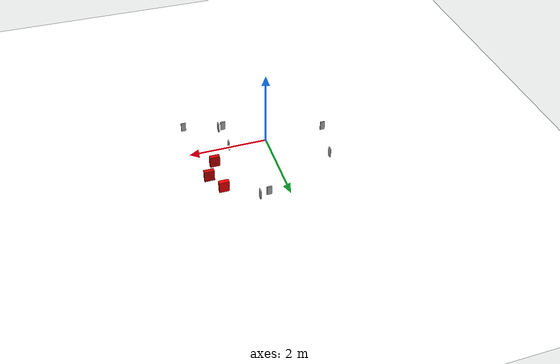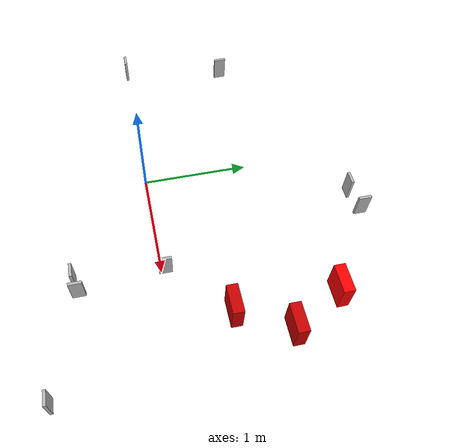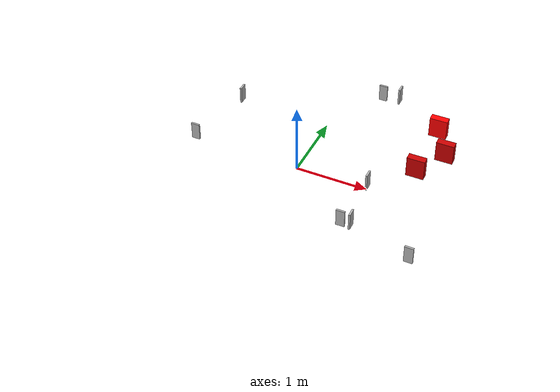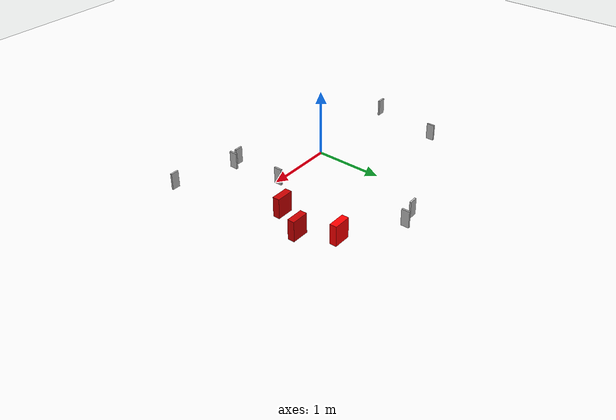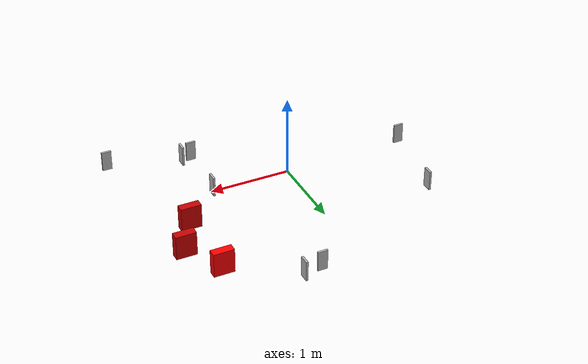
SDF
<sdf version="1.6">
 <world name="default">
  <scene><background>0.2 0.6 0.9 1.0</background><ambient>0.4 0.4 0.4 1.0</ambient></scene>
  <include><uri>model://turtlebot3_autorace_2020/course</uri><pose>0 0 0 0 0 -3.14</pose></include>
  <include>
   <uri>model://turtlebot3_autorace_2020/traffic_parking</uri>
   <pose>0.74 1.95 0.13 0 0 -1.57</pose>
  </include>
  <include>
   <uri>model://turtlebot3_autorace_2020/traffic_tunnel</uri>
   <pose>-1.544 0.00 0.125 0 0 0</pose>
  </include>
  <include>
   <uri>model://turtlebot3_autorace_2020/traffic_stop</uri>
   <pose>-1.35 1.04 0.125 0 -0 -1.57</pose>
  </include>
  <include>
   <uri>model://turtlebot3_autorace_2020/traffic_pl_left</uri>
   <pose>0.50 1.90 0.13 0 0 0</pose>
  </include>
  <include>
   <uri>model://turtlebot3_autorace_2020/traffic_construction</uri>
   <pose>1.0 0.04 0.125 0 -0 -1.57</pose>
  </include>
  <include>
   <uri>model://turtlebot3_autorace_2020/traffic_intersection</uri>
   <pose>1.95 -1.0 0.125 0 -0 0.0</pose>
  </include>
  <include>
   <uri>model://turtlebot3_autorace_2020/traffic_noentry</uri>
   <pose>0.95 -0.758 0.125 0 -0 0.0</pose>
  </include>
  <include>
   <uri>model://turtlebot3_autorace_2020/traffic_right</uri>
   <pose>1.08 -0.728 0.125 0 -0 -1.57</pose>
  </include>
  <light name="sun" type="directional">
   <pose>0 0 10 0 -0 0</pose>
   <diffuse>0.8 0.8 0.8 1</diffuse>
   <specular>0.1 0.1 0.1 1</specular>
   <attenuation>
    <range>1000</range>
    <constant>0.9</constant>
    <linear>0.01</linear>
    <quadratic>0.001</quadratic>
   </attenuation>
   <direction>-0.5 0.5 -1</direction>
  </light>
  <model name="ground2">
   <pose>0 0 -0.1 0 -0 0</pose>
   <static>1</static>
   <link name="ground">
    <collision name="ground_coll"><geometry><box><size>8 8 0.01</size></box></geometry></collision>
    <visual name="ground_vis">
     <geometry><box><size>10 10 0.01</size></box></geometry>
     <material><diffuse>0 0 0 1</diffuse><ambient>0 0 1 1</ambient></material>
    </visual>
   </link>
  </model>
  <gravity>0 0 -9.8</gravity>
  <magnetic_field>6e-06 2.3e-05 -4.2e-05</magnetic_field>
  <atmosphere type="adiabatic"/>
  <physics name="default_physics" default="0" type="ode">
   <max_step_size>0.004</max_step_size>
   <real_time_factor>1</real_time_factor>
   <real_time_update_rate>250</real_time_update_rate>
  </physics>
  <spherical_coordinates>
   <surface_model>EARTH_WGS84</surface_model>
   <latitude_deg>0</latitude_deg>
   <longitude_deg>0</longitude_deg>
   <elevation>0</elevation>
   <heading_deg>0</heading_deg>
  </spherical_coordinates>
  <light name="user_point_light_1" type="point">
   <pose>-1.648146 0.604519 1 0 -0 0</pose>
   <diffuse>0.5 0.5 0.5 1</diffuse>
   <specular>0.1 0.1 0.1 1</specular>
   <attenuation>
    <range>20</range>
    <constant>0.5</constant>
    <linear>0.01</linear>
    <quadratic>0.001</quadratic>
   </attenuation>
   <cast_shadows>0</cast_shadows>
   <direction>0 0 -1</direction>
  </light>
  <light name="user_point_light_2" type="point">
   <pose>1.63854 1.69565 1 0 -0 0</pose>
   <diffuse>0.5 0.5 0.5 1</diffuse>
   <specular>0.1 0.1 0.1 1</specular>
   <attenuation>
    <range>20</range>
    <constant>0.5</constant>
    <linear>0.01</linear>
    <quadratic>0.001</quadratic>
   </attenuation>
   <cast_shadows>0</cast_shadows>
   <direction>0 0 -1</direction>
  </light>
  <light name="user_point_light_3" type="point">
   <pose>0.42  -3.31 1 0 -0 0</pose>
   <diffuse>0.5 0.5 0.5 1</diffuse>
   <specular>0.1 0.1 0.1 1</specular>
   <attenuation>
    <range>20</range>
    <constant>0.5</constant>
    <linear>0.01</linear>
    <quadratic>0.001</quadratic>
   </attenuation>
   <cast_shadows>0</cast_shadows>
   <direction>0 0 -1</direction>
  </light>
  <model name="barrier_1">
   <link name="link">
    <inertial>
     <mass>1</mass>
     <inertia>
      <ixx>0.166667</ixx>
      <ixy>0</ixy>
      <ixz>0</ixz>
      <iyy>0.166667</iyy>
      <iyz>0</iyz>
      <izz>0.166667</izz>
     </inertia>
    </inertial>
    <visual name="visual">
     <geometry><box><size>0.25 0.1 0.3</size></box></geometry>
     <material>
      <shader type="pixel"><normal_map>__default__</normal_map></shader>
      <ambient>0.8 0 0 1</ambient>
      <diffuse>0.8 0 0 1</diffuse>
      <specular>0.01 0.01 0.01 1</specular>
      <emissive>0 0 0 1</emissive>
     </material>
    </visual>
    <collision name="collision">
     <geometry><box><size>0.25 0.1 0.3</size></box></geometry>
     <surface>
      <friction>
       <ode><mu>1</mu><mu2>1</mu2><fdir1>0 0 0</fdir1><slip1>0</slip1><slip2>0</slip2></ode>
       <torsional>
        <coefficient>1</coefficient>
        <patch_radius>0</patch_radius>
        <surface_radius>0</surface_radius>
        <use_patch_radius>1</use_patch_radius>
        <ode><slip>0</slip></ode>
       </torsional>
      </friction>
      <bounce><restitution_coefficient>0</restitution_coefficient><threshold>1e+06</threshold></bounce>
      <contact>
       <collide_without_contact>0</collide_without_contact>
       <collide_without_contact_bitmask>1</collide_without_contact_bitmask>
       <collide_bitmask>1</collide_bitmask>
       <ode>
        <soft_cfm>0</soft_cfm>
        <soft_erp>0.2</soft_erp>
        <kp>1e+13</kp>
        <kd>1</kd>
        <max_vel>0.01</max_vel>
        <min_depth>0</min_depth>
       </ode>
       <bullet>
        <split_impulse>1</split_impulse>
        <split_impulse_penetration_threshold>-0.01</split_impulse_penetration_threshold>
        <soft_cfm>0</soft_cfm>
        <soft_erp>0.2</soft_erp>
        <kp>1e+13</kp>
        <kd>1</kd>
       </bullet>
      </contact>
     </surface>
    </collision>
   </link>
   <static>0</static>
   <pose>1.49 0.54 0.15 0 -0 0</pose>
  </model>
  <model name="barrier_2">
   <link name="link">
    <inertial>
     <mass>1</mass>
     <inertia>
      <ixx>0.166667</ixx>
      <ixy>0</ixy>
      <ixz>0</ixz>
      <iyy>0.166667</iyy>
      <iyz>0</iyz>
      <izz>0.166667</izz>
     </inertia>
    </inertial>
    <visual name="visual">
     <geometry><box><size>0.25 0.1 0.3</size></box></geometry>
     <material>
      <shader type="pixel"><normal_map>__default__</normal_map></shader>
      <ambient>0.8 0 0 1</ambient>
      <diffuse>0.8 0 0 1</diffuse>
      <specular>0.01 0.01 0.01 1</specular>
      <emissive>0 0 0 1</emissive>
     </material>
    </visual>
    <collision name="collision">
     <geometry><box><size>0.25 0.1 0.3</size></box></geometry>
     <surface>
      <friction>
       <ode><mu>1</mu><mu2>1</mu2><fdir1>0 0 0</fdir1><slip1>0</slip1><slip2>0</slip2></ode>
       <torsional>
        <coefficient>1</coefficient>
        <patch_radius>0</patch_radius>
        <surface_radius>0</surface_radius>
        <use_patch_radius>1</use_patch_radius>
        <ode><slip>0</slip></ode>
       </torsional>
      </friction>
      <bounce><restitution_coefficient>0</restitution_coefficient><threshold>1e+06</threshold></bounce>
      <contact>
       <collide_without_contact>0</collide_without_contact>
       <collide_without_contact_bitmask>1</collide_without_contact_bitmask>
       <collide_bitmask>1</collide_bitmask>
       <ode>
        <soft_cfm>0</soft_cfm>
        <soft_erp>0.2</soft_erp>
        <kp>1e+13</kp>
        <kd>1</kd>
        <max_vel>0.01</max_vel>
        <min_depth>0</min_depth>
       </ode>
       <bullet>
        <split_impulse>1</split_impulse>
        <split_impulse_penetration_threshold>-0.01</split_impulse_penetration_threshold>
        <soft_cfm>0</soft_cfm>
        <soft_erp>0.2</soft_erp>
        <kp>1e+13</kp>
        <kd>1</kd>
       </bullet>
      </contact>
     </surface>
    </collision>
   </link>
   <static>0</static>
   <pose>1.74 1 0.15 0 -0 0</pose>
  </model>
  <model name="barrier_3">
   <link name="link">
    <inertial>
     <mass>1</mass>
     <inertia>
      <ixx>0.166667</ixx>
      <ixy>0</ixy>
      <ixz>0</ixz>
      <iyy>0.166667</iyy>
      <iyz>0</iyz>
      <izz>0.166667</izz>
     </inertia>
    </inertial>
    <visual name="visual">
     <geometry><box><size>0.25 0.1 0.3</size></box></geometry>
     <material>
      <diffuse>1 0 0 1</diffuse>
      <ambient>1 0 0 1</ambient>
      <specular>1 0 0 1</specular>
      <emissive>0.3 0 0 1</emissive>
      <lighting>true</lighting>
     </material>
    </visual>
    <collision name="collision">
     <geometry><box><size>0.25 0.1 0.3</size></box></geometry>
     <surface>
      <friction>
       <ode><mu>1</mu><mu2>1</mu2><fdir1>0 0 0</fdir1><slip1>0</slip1><slip2>0</slip2></ode>
       <torsional>
        <coefficient>1</coefficient>
        <patch_radius>0</patch_radius>
        <surface_radius>0</surface_radius>
        <use_patch_radius>1</use_patch_radius>
        <ode><slip>0</slip></ode>
       </torsional>
      </friction>
      <bounce><restitution_coefficient>0</restitution_coefficient><threshold>1e+06</threshold></bounce>
      <contact>
       <collide_without_contact>0</collide_without_contact>
       <collide_without_contact_bitmask>1</collide_without_contact_bitmask>
       <collide_bitmask>1</collide_bitmask>
       <ode>
        <soft_cfm>0</soft_cfm>
        <soft_erp>0.2</soft_erp>
        <kp>1e+13</kp>
        <kd>1</kd>
        <max_vel>0.01</max_vel>
        <min_depth>0</min_depth>
       </ode>
       <bullet>
        <split_impulse>1</split_impulse>
        <split_impulse_penetration_threshold>-0.01</split_impulse_penetration_threshold>
        <soft_cfm>0</soft_cfm>
        <soft_erp>0.2</soft_erp>
        <kp>1e+13</kp>
        <kd>1</kd>
       </bullet>
      </contact>
     </surface>
    </collision>
   </link>
   <static>0</static>
   <pose>1.49 1.464 0.15 0 -0 0</pose>
  </model>
  <plugin filename="gz-sim-physics-system" name="gz::sim::systems::Physics"/>
  <plugin filename="gz-sim-user-commands-system" name="gz::sim::systems::UserCommands"/>
  <plugin filename="gz-sim-scene-broadcaster-system" name="gz::sim::systems::SceneBroadcaster"/>
  <plugin filename="gz-sim-sensors-system" name="gz::sim::systems::Sensors">
   <render_engine>ogre2</render_engine>
  </plugin>
  <plugin filename="gz-sim-imu-system" name="gz::sim::systems::Imu"/>
 </world>
</sdf>

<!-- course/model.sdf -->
<sdf version="1.6">
  <model name="course">
    <static>true</static>
    <link name="course_link">

      <collision name="course_collision">
        <geometry>
          <plane>
            <normal>0 0 1</normal>
            <size>15 15</size>
          </plane>
        </geometry>
        <surface>
          <friction>
            <ode>
              <mu>100</mu>
              <mu2>50</mu2>
            </ode>
          </friction>
        </surface>
      </collision>

      <visual name="course_visual">
        <cast_shadows>false</cast_shadows>
        <geometry>
          <plane>
            <normal>0 0 1</normal>
            <size>15 15</size>
          </plane>
        </geometry>
       <material>
          <diffuse>1.0 1.0 1.0 1.0</diffuse>
          <specular>0.0 0.0 0.0 1.0</specular>
          <emissive>0.0 0.0 0.0 1.0</emissive>
          <pbr>
            <metal>
              <albedo_map>model://turtlebot3_autorace_2020/course/materials/textures/course.png</albedo_map>
              <roughness>1.0</roughness>
              <metalness>0.0</metalness>
            </metal>
          </pbr>
        </material>
      </visual>

    </link>
  </model>
</sdf>

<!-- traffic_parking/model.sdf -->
<sdf version="1.6">
  <model name="traffic_parking">
    <static>true</static>
    <link name="box">
      <pose>0 0 0 0 0 0</pose>
      <collision name="collision">
        <geometry>
          <box>
            <size>0.12 0.025 0.25</size>
          </box>
        </geometry>
      </collision>
      <visual name="visual">
        <geometry>
          <box>
            <size>0.12 0.025 0.25</size>
          </box>
        </geometry>
        <material>
          <script>
            <uri>model://turtlebot3_autorace_2020/traffic_parking/materials/scripts</uri>
            <uri>model://turtlebot3_autorace_2020/traffic_parking/materials/textures</uri>
            <name>traffic_parking</name>
          </script>
        </material>
      </visual>
    </link>
  </model>
</sdf>

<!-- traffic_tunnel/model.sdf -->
<sdf version="1.6">
  <model name="traffic_tunnel">
    <pose>0 0 0.125 0 0 0</pose>
    <link name="box">
      <pose>0 0 0 0 0 0</pose>
      <collision name="collision">
        <geometry>
          <box>
            <size>0.12 0.025 0.25</size>
          </box>
        </geometry>
      </collision>
      <visual name="visual">
        <geometry>
          <box>
            <size>0.12 0.025 0.25</size>
          </box>
        </geometry>
        <material>
          <script>
            <uri>model://turtlebot3_autorace_2020/traffic_tunnel/materials/scripts</uri>
            <uri>model://turtlebot3_autorace_2020/traffic_tunnel/materials/textures</uri>
            <name>traffic_tunnel</name>
          </script>
        </material>
      </visual>
    </link>
  </model>
</sdf>

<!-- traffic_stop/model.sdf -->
<sdf version="1.6">
  <model name="traffic_stop">
    <static>true</static>
    <link name="box">
      <pose>0 0 0 0 0 0</pose>
      <collision name="collision">
        <geometry>
          <box>
            <size>0.12 0.025 0.25</size>
          </box>
        </geometry>
      </collision>
      <visual name="visual">
        <geometry>
          <box>
            <size>0.12 0.025 0.25</size>
          </box>
        </geometry>
        <material>
          <script>
            <uri>model://turtlebot3_autorace_2020/traffic_stop/materials/scripts</uri>
            <uri>model://turtlebot3_autorace_2020/traffic_stop/materials/textures</uri>
            <name>traffic_stop</name>
          </script>
        </material>
      </visual>
    </link>
  </model>
</sdf>

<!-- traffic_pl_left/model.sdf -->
<sdf version="1.6">
  <model name="traffic_pl_left">
    <static>true</static>
    <link name="box">
      <pose>0 0 0 0 0 0</pose>
      <collision name="collision">
        <geometry>
          <box>
            <size>0.12 0.025 0.25</size>
          </box>
        </geometry>
      </collision>
      <visual name="visual">
        <geometry>
          <box>
            <size>0.12 0.025 0.25</size>
          </box>
        </geometry>
        <material>
          <script>
            <uri>model://turtlebot3_autorace_2020/traffic_pl_left/materials/scripts</uri>
            <uri>model://turtlebot3_autorace_2020/traffic_pl_left/materials/textures</uri>
            <name>traffic_pl_left</name>
          </script>
        </material>
      </visual>
    </link>
  </model>
</sdf>

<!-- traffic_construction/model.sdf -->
<sdf version="1.6">
  <model name="traffic_construction">
    <static>true</static>
    <link name="box">
      <pose>0 0 0 0 0 0</pose>
      <collision name="collision">
        <geometry>
          <box>
            <size>0.12 0.025 0.25</size>
          </box>
        </geometry>
      </collision>
      <visual name="visual">
        <geometry>
          <box>
            <size>0.12 0.025 0.25</size>
          </box>
        </geometry>
        <material>
          <script>
            <uri>model://turtlebot3_autorace_2020/traffic_construction/materials/scripts</uri>
            <uri>model://turtlebot3_autorace_2020/traffic_construction/materials/textures</uri>
            <name>traffic_construction</name>
          </script>
        </material>
      </visual>
    </link>
  </model>
</sdf>

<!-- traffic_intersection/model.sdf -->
<sdf version="1.6">
  <model name="traffic_intersection">
    <static>true</static>
    <link name="box">
      <pose>0 0 0 0 0 0</pose>
      <collision name="collision">
        <geometry>
          <box>
            <size>0.12 0.025 0.25</size>
          </box>
        </geometry>
      </collision>
      <visual name="visual">
        <geometry>
          <box>
            <size>0.12 0.025 0.25</size>
          </box>
        </geometry>
        <material>
          <script>
            <uri>model://turtlebot3_autorace_2020/traffic_intersection/materials/scripts</uri>
            <uri>model://turtlebot3_autorace_2020/traffic_intersection/materials/textures</uri>
            <name>traffic_intersection</name>
          </script>
        </material>
      </visual>
    </link>
  </model>
</sdf>

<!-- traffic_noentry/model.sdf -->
<sdf version="1.6">
  <model name="traffic_noentry">
    <static>true</static>
    <link name="box">
      <pose>0 0 0 0 0 0</pose>
      <collision name="collision">
        <geometry>
          <box>
            <size>0.12 0.025 0.25</size>
          </box>
        </geometry>
      </collision>
      <visual name="visual">
        <geometry>
          <box>
            <size>0.12 0.025 0.25</size>
          </box>
        </geometry>
        <material>
          <script>
            <uri>model://turtlebot3_autorace_2020/traffic_noentry/materials/scripts</uri>
            <uri>model://turtlebot3_autorace_2020/traffic_noentry/materials/textures</uri>
            <name>traffic_noentry</name>
          </script>
        </material>
      </visual>
    </link>
  </model>
</sdf>

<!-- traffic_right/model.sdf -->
<sdf version="1.6">
  <model name="traffic_right">
    <static>true</static>
    <link name="box">
      <pose>0 0 0 0 0 0</pose>
      <collision name="collision">
        <geometry>
          <box>
            <size>0.12 0.025 0.25</size>
          </box>
        </geometry>
      </collision>
      <visual name="visual">
        <geometry>
          <box>
            <size>0.12 0.025 0.25</size>
          </box>
        </geometry>
        <material>
          <script>
            <uri>model://turtlebot3_autorace_2020/traffic_right/materials/scripts</uri>
            <uri>model://turtlebot3_autorace_2020/traffic_right/materials/textures</uri>
            <name>traffic_right</name>
          </script>
        </material>
      </visual>
    </link>
  </model>
</sdf>
